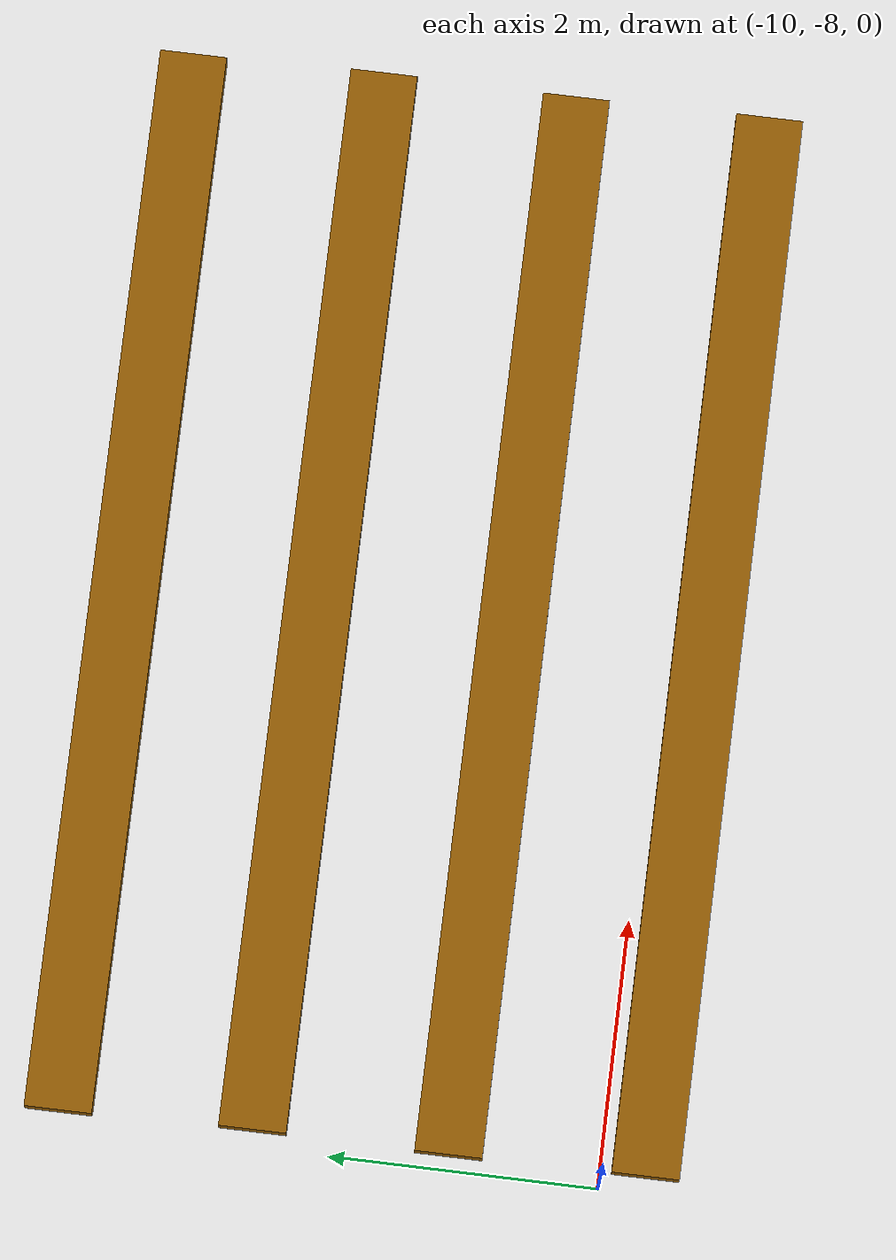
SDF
<?xml version='1.0'?>
<sdf version='1.7'>
  <model name='Field'>
    <pose>-4.95366 -4.29197 0 0 -0 0</pose>
    <link name='Wall_11'>
      <collision name='Wall_11_Collision'>
        <geometry>
          <box>
            <size>8 0.5 0.2</size>
          </box>
        </geometry>
        <pose>0 0 0.1 0 -0 0</pose>
      </collision>
      <visual name='Wall_11_Visual'>
        <pose>0 0 0.1 0 -0 0</pose>
        <geometry>
          <box>
            <size>8 0.5 0.2</size>
          </box>
        </geometry>
        <material>
          <script>
            <uri>file://media/materials/scripts/gazebo.material</uri>
            <name>Gazebo/Grey</name>
          </script>
          <ambient>0.560784 0.34902 0.00784314 1</ambient>
        </material>
        <meta>
          <layer>0</layer>
        </meta>
      </visual>
      <pose>-0.925935 -1.13708 0 0 -0 0</pose>
    </link>
    <link name='Wall_13'>
      <collision name='Wall_13_Collision'>
        <geometry>
          <box>
            <size>8 0.5 0.2</size>
          </box>
        </geometry>
        <pose>0 0 0.1 0 -0 0</pose>
      </collision>
      <visual name='Wall_13_Visual'>
        <pose>0 0 0.1 0 -0 0</pose>
        <geometry>
          <box>
            <size>8 0.5 0.2</size>
          </box>
        </geometry>
        <material>
          <script>
            <uri>file://media/materials/scripts/gazebo.material</uri>
            <name>Gazebo/Grey</name>
          </script>
          <ambient>0.560784 0.34902 0.00784314 1</ambient>
        </material>
        <meta>
          <layer>0</layer>
        </meta>
      </visual>
      <pose>-0.95366 0.297216 0 0 -0 0</pose>
    </link>
    <link name='Wall_15'>
      <collision name='Wall_15_Collision'>
        <geometry>
          <box>
            <size>8 0.5 0.2</size>
          </box>
        </geometry>
        <pose>0 0 0.1 0 -0 0</pose>
      </collision>
      <visual name='Wall_15_Visual'>
        <pose>0 0 0.1 0 -0 0</pose>
        <geometry>
          <box>
            <size>8 0.5 0.2</size>
          </box>
        </geometry>
        <material>
          <script>
            <uri>file://media/materials/scripts/gazebo.material</uri>
            <name>Gazebo/Grey</name>
          </script>
          <ambient>0.560784 0.34902 0.00784314 1</ambient>
        </material>
        <meta>
          <layer>0</layer>
        </meta>
      </visual>
      <pose>-0.920634 -4.04197 0 0 -0 0</pose>
    </link>
    <link name='Wall_6'>
      <collision name='Wall_6_Collision'>
        <geometry>
          <box>
            <size>8 0.5 0.2</size>
          </box>
        </geometry>
        <pose>0 0 0.1 0 -0 0</pose>
      </collision>
      <visual name='Wall_6_Visual'>
        <pose>0 0 0.1 0 -0 0</pose>
        <geometry>
          <box>
            <size>8 0.5 0.2</size>
          </box>
        </geometry>
        <material>
          <script>
            <uri>file://media/materials/scripts/gazebo.material</uri>
            <name>Gazebo/Grey</name>
          </script>
          <ambient>0.560784 0.34902 0.00784314 1</ambient>
        </material>
        <meta>
          <layer>0</layer>
        </meta>
      </visual>
      <pose>-0.93634 -2.58803 0 0 -0 0</pose>
    </link>
    <static>1</static>
  </model>
</sdf>
